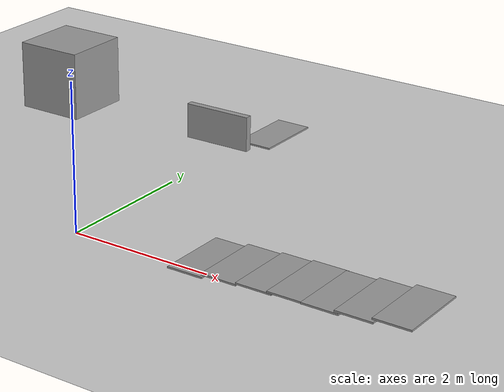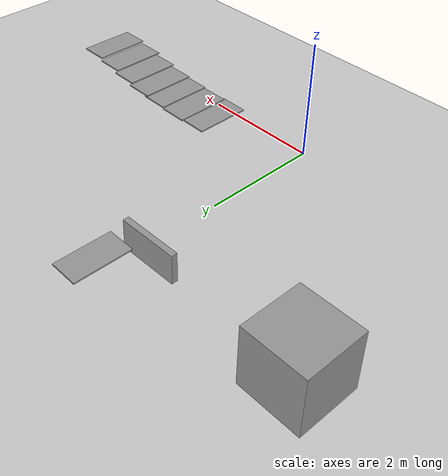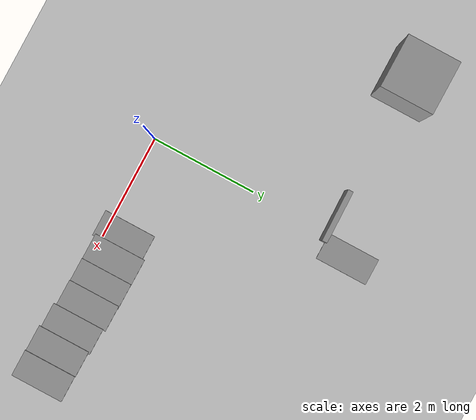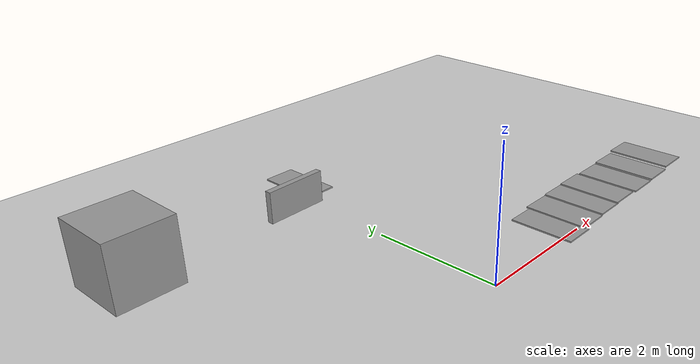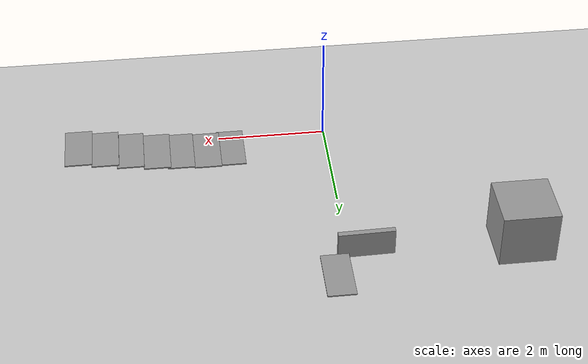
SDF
<sdf version="1.7">
 <world name="default">
  <light name="sun" type="directional">
   <pose>0 0 10 0 -0 0</pose>
   <diffuse>0.8 0.8 0.8 1</diffuse>
   <specular>0.1 0.1 0.1 1</specular>
   <attenuation>
    <range>1000</range>
    <constant>0.9</constant>
    <linear>0.01</linear>
    <quadratic>0.001</quadratic>
   </attenuation>
   <direction>-0.5 0.5 -1</direction>
   <spot><inner_angle>0</inner_angle><outer_angle>0</outer_angle><falloff>0</falloff></spot>
  </light>
  <model name="ground_plane">
   <static>1</static>
   <link name="link">
    <collision name="collision">
     <geometry><plane><normal>0 0 1</normal><size>100 100</size></plane></geometry>
     <surface><friction><ode><mu>100</mu><mu2>50</mu2></ode></friction></surface>
    </collision>
    <visual name="visual">
     <cast_shadows>0</cast_shadows>
     <geometry><plane><normal>0 0 1</normal><size>100 100</size></plane></geometry>
     <material>
      <script><uri>file://media/materials/scripts/gazebo.material</uri><name>Gazebo/Grey</name></script>
     </material>
    </visual>
   </link>
  </model>
  <gravity>0 0 -9.8</gravity>
  <magnetic_field>6e-06 2.3e-05 -4.2e-05</magnetic_field>
  <atmosphere type="adiabatic"/>
  <physics name="default_physics" default="0" type="ode">
   <max_step_size>0.001</max_step_size>
   <real_time_factor>1</real_time_factor>
   <real_time_update_rate>1000</real_time_update_rate>
  </physics>
  <scene><ambient>0.4 0.4 0.4 1</ambient><background>0.7 0.7 0.7 1</background><shadows>1</shadows></scene>
  <spherical_coordinates>
   <surface_model>EARTH_WGS84</surface_model>
   <latitude_deg>0</latitude_deg>
   <longitude_deg>0</longitude_deg>
   <elevation>0</elevation>
   <heading_deg>0</heading_deg>
  </spherical_coordinates>
  <audio><device>default</device></audio>
  <model name="unit_box_stairs_2_clone">
   <link name="link">
    <inertial>
     <mass>56.0142</mass>
     <inertia><ixx>4.67016</ixx><ixy>0</ixy><ixz>0</ixz><iyy>1.18862</iyy><iyz>0</iyz><izz>5.85417</izz></inertia>
    </inertial>
    <self_collide>1</self_collide>
    <kinematic>1</kinematic>
    <pose>-0.16833 0.492907 -0.383532 0 -0 0</pose>
    <visual name="visual">
     <geometry><box><size>0.504129 1 0.022223</size></box></geometry>
     <material>
      <script><name>Gazebo/Grey</name><uri>file://media/materials/scripts/gazebo.material</uri></script>
      <shader type="pixel"><normal_map>__default__</normal_map></shader>
      <ambient>0.3 0.3 0.3 1</ambient>
      <diffuse>0.7 0.7 0.7 1</diffuse>
      <specular>0.01 0.01 0.01 1</specular>
      <emissive>0 0 0 1</emissive>
     </material>
    </visual>
    <collision name="collision">
     <geometry><box><size>0.504129 1 0.022223</size></box></geometry>
     <surface>
      <friction>
       <ode><mu>1</mu><mu2>1</mu2><fdir1>0 0 0</fdir1><slip1>0</slip1><slip2>0</slip2></ode>
       <torsional>
        <coefficient>1</coefficient>
        <patch_radius>0</patch_radius>
        <surface_radius>0</surface_radius>
        <use_patch_radius>1</use_patch_radius>
        <ode><slip>0</slip></ode>
       </torsional>
      </friction>
      <bounce><restitution_coefficient>0</restitution_coefficient><threshold>1e+06</threshold></bounce>
      <contact>
       <collide_without_contact>0</collide_without_contact>
       <collide_without_contact_bitmask>1</collide_without_contact_bitmask>
       <collide_bitmask>1</collide_bitmask>
       <ode>
        <soft_cfm>0</soft_cfm>
        <soft_erp>0.2</soft_erp>
        <kp>1e+13</kp>
        <kd>1</kd>
        <max_vel>0.01</max_vel>
        <min_depth>0</min_depth>
       </ode>
       <bullet>
        <split_impulse>1</split_impulse>
        <split_impulse_penetration_threshold>-0.01</split_impulse_penetration_threshold>
        <soft_cfm>0</soft_cfm>
        <soft_erp>0.2</soft_erp>
        <kp>1e+13</kp>
        <kd>1</kd>
       </bullet>
      </contact>
     </surface>
    </collision>
   </link>
   <static>0</static>
   <pose>1.96889 -0.158443 0.413742 0 -0 0</pose>
  </model>
  <model name="unit_box_stairs_2_clone_clone">
   <link name="link">
    <inertial>
     <mass>56.0142</mass>
     <inertia><ixx>4.67016</ixx><ixy>0</ixy><ixz>0</ixz><iyy>1.18862</iyy><iyz>0</iyz><izz>5.85417</izz></inertia>
    </inertial>
    <self_collide>1</self_collide>
    <kinematic>1</kinematic>
    <pose>-0.16833 0.492907 -0.383532 0 -0 0</pose>
    <visual name="visual">
     <geometry><box><size>0.504129 1 0.022223</size></box></geometry>
     <material>
      <script><name>Gazebo/Grey</name><uri>file://media/materials/scripts/gazebo.material</uri></script>
      <shader type="pixel"><normal_map>__default__</normal_map></shader>
      <ambient>0.3 0.3 0.3 1</ambient>
      <diffuse>0.7 0.7 0.7 1</diffuse>
      <specular>0.01 0.01 0.01 1</specular>
      <emissive>0 0 0 1</emissive>
     </material>
    </visual>
    <collision name="collision">
     <geometry><box><size>0.504129 1 0.022223</size></box></geometry>
     <surface>
      <friction>
       <ode><mu>1</mu><mu2>1</mu2><fdir1>0 0 0</fdir1><slip1>0</slip1><slip2>0</slip2></ode>
       <torsional>
        <coefficient>1</coefficient>
        <patch_radius>0</patch_radius>
        <surface_radius>0</surface_radius>
        <use_patch_radius>1</use_patch_radius>
        <ode><slip>0</slip></ode>
       </torsional>
      </friction>
      <bounce><restitution_coefficient>0</restitution_coefficient><threshold>1e+06</threshold></bounce>
      <contact>
       <collide_without_contact>0</collide_without_contact>
       <collide_without_contact_bitmask>1</collide_without_contact_bitmask>
       <collide_bitmask>1</collide_bitmask>
       <ode>
        <soft_cfm>0</soft_cfm>
        <soft_erp>0.2</soft_erp>
        <kp>1e+13</kp>
        <kd>1</kd>
        <max_vel>0.01</max_vel>
        <min_depth>0</min_depth>
       </ode>
       <bullet>
        <split_impulse>1</split_impulse>
        <split_impulse_penetration_threshold>-0.01</split_impulse_penetration_threshold>
        <soft_cfm>0</soft_cfm>
        <soft_erp>0.2</soft_erp>
        <kp>1e+13</kp>
        <kd>1</kd>
       </bullet>
      </contact>
     </surface>
    </collision>
   </link>
   <static>0</static>
   <pose>2.42466 -0.116135 0.433551 0 -0 0</pose>
  </model>
  <model name="unit_box_stairs_2_clone_clone_0">
   <link name="link">
    <inertial>
     <mass>56.0142</mass>
     <inertia><ixx>4.67016</ixx><ixy>0</ixy><ixz>0</ixz><iyy>1.18862</iyy><iyz>0</iyz><izz>5.85417</izz></inertia>
    </inertial>
    <self_collide>1</self_collide>
    <kinematic>1</kinematic>
    <pose>-0.16833 0.492907 -0.383532 0 -0 0</pose>
    <visual name="visual">
     <geometry><box><size>0.504129 1 0.022223</size></box></geometry>
     <material>
      <script><name>Gazebo/Grey</name><uri>file://media/materials/scripts/gazebo.material</uri></script>
      <shader type="pixel"><normal_map>__default__</normal_map></shader>
      <ambient>0.3 0.3 0.3 1</ambient>
      <diffuse>0.7 0.7 0.7 1</diffuse>
      <specular>0.01 0.01 0.01 1</specular>
      <emissive>0 0 0 1</emissive>
     </material>
    </visual>
    <collision name="collision">
     <geometry><box><size>0.504129 1 0.022223</size></box></geometry>
     <surface>
      <friction>
       <ode><mu>1</mu><mu2>1</mu2><fdir1>0 0 0</fdir1><slip1>0</slip1><slip2>0</slip2></ode>
       <torsional>
        <coefficient>1</coefficient>
        <patch_radius>0</patch_radius>
        <surface_radius>0</surface_radius>
        <use_patch_radius>1</use_patch_radius>
        <ode><slip>0</slip></ode>
       </torsional>
      </friction>
      <bounce><restitution_coefficient>0</restitution_coefficient><threshold>1e+06</threshold></bounce>
      <contact>
       <collide_without_contact>0</collide_without_contact>
       <collide_without_contact_bitmask>1</collide_without_contact_bitmask>
       <collide_bitmask>1</collide_bitmask>
       <ode>
        <soft_cfm>0</soft_cfm>
        <soft_erp>0.2</soft_erp>
        <kp>1e+13</kp>
        <kd>1</kd>
        <max_vel>0.01</max_vel>
        <min_depth>0</min_depth>
       </ode>
       <bullet>
        <split_impulse>1</split_impulse>
        <split_impulse_penetration_threshold>-0.01</split_impulse_penetration_threshold>
        <soft_cfm>0</soft_cfm>
        <soft_erp>0.2</soft_erp>
        <kp>1e+13</kp>
        <kd>1</kd>
       </bullet>
      </contact>
     </surface>
    </collision>
   </link>
   <static>0</static>
   <pose>2.92324 -0.117843 0.457505 0 -0 0</pose>
  </model>
  <model name="unit_box_stairs_2_clone_clone_1">
   <link name="link">
    <inertial>
     <mass>56.0142</mass>
     <inertia><ixx>4.67016</ixx><ixy>0</ixy><ixz>0</ixz><iyy>1.18862</iyy><iyz>0</iyz><izz>5.85417</izz></inertia>
    </inertial>
    <self_collide>1</self_collide>
    <kinematic>1</kinematic>
    <pose>-0.16833 0.492907 -0.383532 0 -0 0</pose>
    <visual name="visual">
     <geometry><box><size>0.504129 1 0.022223</size></box></geometry>
     <material>
      <script><name>Gazebo/Grey</name><uri>file://media/materials/scripts/gazebo.material</uri></script>
      <shader type="pixel"><normal_map>__default__</normal_map></shader>
      <ambient>0.3 0.3 0.3 1</ambient>
      <diffuse>0.7 0.7 0.7 1</diffuse>
      <specular>0.01 0.01 0.01 1</specular>
      <emissive>0 0 0 1</emissive>
     </material>
    </visual>
    <collision name="collision">
     <geometry><box><size>0.504129 1 0.022223</size></box></geometry>
     <surface>
      <friction>
       <ode><mu>1</mu><mu2>1</mu2><fdir1>0 0 0</fdir1><slip1>0</slip1><slip2>0</slip2></ode>
       <torsional>
        <coefficient>1</coefficient>
        <patch_radius>0</patch_radius>
        <surface_radius>0</surface_radius>
        <use_patch_radius>1</use_patch_radius>
        <ode><slip>0</slip></ode>
       </torsional>
      </friction>
      <bounce><restitution_coefficient>0</restitution_coefficient><threshold>1e+06</threshold></bounce>
      <contact>
       <collide_without_contact>0</collide_without_contact>
       <collide_without_contact_bitmask>1</collide_without_contact_bitmask>
       <collide_bitmask>1</collide_bitmask>
       <ode>
        <soft_cfm>0</soft_cfm>
        <soft_erp>0.2</soft_erp>
        <kp>1e+13</kp>
        <kd>1</kd>
        <max_vel>0.01</max_vel>
        <min_depth>0</min_depth>
       </ode>
       <bullet>
        <split_impulse>1</split_impulse>
        <split_impulse_penetration_threshold>-0.01</split_impulse_penetration_threshold>
        <soft_cfm>0</soft_cfm>
        <soft_erp>0.2</soft_erp>
        <kp>1e+13</kp>
        <kd>1</kd>
       </bullet>
      </contact>
     </surface>
    </collision>
   </link>
   <static>0</static>
   <pose>3.36696 -0.126113 0.482049 0 -0 0</pose>
  </model>
  <model name="unit_box_stairs_2_clone_clone_2">
   <link name="link">
    <inertial>
     <mass>56.0142</mass>
     <inertia><ixx>4.67016</ixx><ixy>0</ixy><ixz>0</ixz><iyy>1.18862</iyy><iyz>0</iyz><izz>5.85417</izz></inertia>
    </inertial>
    <self_collide>1</self_collide>
    <kinematic>1</kinematic>
    <pose>-0.16833 0.492907 -0.383532 0 -0 0</pose>
    <visual name="visual">
     <geometry><box><size>0.504129 1 0.022223</size></box></geometry>
     <material>
      <script><name>Gazebo/Grey</name><uri>file://media/materials/scripts/gazebo.material</uri></script>
      <shader type="pixel"><normal_map>__default__</normal_map></shader>
      <ambient>0.3 0.3 0.3 1</ambient>
      <diffuse>0.7 0.7 0.7 1</diffuse>
      <specular>0.01 0.01 0.01 1</specular>
      <emissive>0 0 0 1</emissive>
     </material>
    </visual>
    <collision name="collision">
     <geometry><box><size>0.504129 1 0.022223</size></box></geometry>
     <surface>
      <friction>
       <ode><mu>1</mu><mu2>1</mu2><fdir1>0 0 0</fdir1><slip1>0</slip1><slip2>0</slip2></ode>
       <torsional>
        <coefficient>1</coefficient>
        <patch_radius>0</patch_radius>
        <surface_radius>0</surface_radius>
        <use_patch_radius>1</use_patch_radius>
        <ode><slip>0</slip></ode>
       </torsional>
      </friction>
      <bounce><restitution_coefficient>0</restitution_coefficient><threshold>1e+06</threshold></bounce>
      <contact>
       <collide_without_contact>0</collide_without_contact>
       <collide_without_contact_bitmask>1</collide_without_contact_bitmask>
       <collide_bitmask>1</collide_bitmask>
       <ode>
        <soft_cfm>0</soft_cfm>
        <soft_erp>0.2</soft_erp>
        <kp>1e+13</kp>
        <kd>1</kd>
        <max_vel>0.01</max_vel>
        <min_depth>0</min_depth>
       </ode>
       <bullet>
        <split_impulse>1</split_impulse>
        <split_impulse_penetration_threshold>-0.01</split_impulse_penetration_threshold>
        <soft_cfm>0</soft_cfm>
        <soft_erp>0.2</soft_erp>
        <kp>1e+13</kp>
        <kd>1</kd>
       </bullet>
      </contact>
     </surface>
    </collision>
   </link>
   <static>0</static>
   <pose>3.85893 -0.175027 0.506632 0 -0 0</pose>
  </model>
  <model name="unit_box_stairs_2_clone_clone_3">
   <link name="link">
    <inertial>
     <mass>56.0142</mass>
     <inertia><ixx>4.67016</ixx><ixy>0</ixy><ixz>0</ixz><iyy>1.18862</iyy><iyz>0</iyz><izz>5.85417</izz></inertia>
    </inertial>
    <self_collide>1</self_collide>
    <kinematic>1</kinematic>
    <pose>-0.16833 0.492907 -0.383532 0 -0 0</pose>
    <visual name="visual">
     <geometry><box><size>0.504129 1 0.022223</size></box></geometry>
     <material>
      <script><name>Gazebo/Grey</name><uri>file://media/materials/scripts/gazebo.material</uri></script>
      <shader type="pixel"><normal_map>__default__</normal_map></shader>
      <ambient>0.3 0.3 0.3 1</ambient>
      <diffuse>0.7 0.7 0.7 1</diffuse>
      <specular>0.01 0.01 0.01 1</specular>
      <emissive>0 0 0 1</emissive>
     </material>
    </visual>
    <collision name="collision">
     <geometry><box><size>0.504129 1 0.022223</size></box></geometry>
     <surface>
      <friction>
       <ode><mu>1</mu><mu2>1</mu2><fdir1>0 0 0</fdir1><slip1>0</slip1><slip2>0</slip2></ode>
       <torsional>
        <coefficient>1</coefficient>
        <patch_radius>0</patch_radius>
        <surface_radius>0</surface_radius>
        <use_patch_radius>1</use_patch_radius>
        <ode><slip>0</slip></ode>
       </torsional>
      </friction>
      <bounce><restitution_coefficient>0</restitution_coefficient><threshold>1e+06</threshold></bounce>
      <contact>
       <collide_without_contact>0</collide_without_contact>
       <collide_without_contact_bitmask>1</collide_without_contact_bitmask>
       <collide_bitmask>1</collide_bitmask>
       <ode>
        <soft_cfm>0</soft_cfm>
        <soft_erp>0.2</soft_erp>
        <kp>1e+13</kp>
        <kd>1</kd>
        <max_vel>0.01</max_vel>
        <min_depth>0</min_depth>
       </ode>
       <bullet>
        <split_impulse>1</split_impulse>
        <split_impulse_penetration_threshold>-0.01</split_impulse_penetration_threshold>
        <soft_cfm>0</soft_cfm>
        <soft_erp>0.2</soft_erp>
        <kp>1e+13</kp>
        <kd>1</kd>
       </bullet>
      </contact>
     </surface>
    </collision>
   </link>
   <static>0</static>
   <pose>4.32152 -0.204815 0.557563 0 -0 0</pose>
  </model>
  <model name="unit_box_stairs_2_clone_clone_4">
   <link name="link">
    <inertial>
     <mass>56.0142</mass>
     <inertia><ixx>4.67016</ixx><ixy>0</ixy><ixz>0</ixz><iyy>1.18862</iyy><iyz>0</iyz><izz>5.85417</izz></inertia>
    </inertial>
    <self_collide>1</self_collide>
    <kinematic>1</kinematic>
    <pose>-0.16833 0.492907 -0.383532 0 -0 0</pose>
    <visual name="visual">
     <geometry><box><size>0.504129 1 0.022223</size></box></geometry>
     <material>
      <script><name>Gazebo/Grey</name><uri>file://media/materials/scripts/gazebo.material</uri></script>
      <shader type="pixel"><normal_map>__default__</normal_map></shader>
      <ambient>0.3 0.3 0.3 1</ambient>
      <diffuse>0.7 0.7 0.7 1</diffuse>
      <specular>0.01 0.01 0.01 1</specular>
      <emissive>0 0 0 1</emissive>
     </material>
    </visual>
    <collision name="collision">
     <geometry><box><size>0.504129 1 0.022223</size></box></geometry>
     <surface>
      <friction>
       <ode><mu>1</mu><mu2>1</mu2><fdir1>0 0 0</fdir1><slip1>0</slip1><slip2>0</slip2></ode>
       <torsional>
        <coefficient>1</coefficient>
        <patch_radius>0</patch_radius>
        <surface_radius>0</surface_radius>
        <use_patch_radius>1</use_patch_radius>
        <ode><slip>0</slip></ode>
       </torsional>
      </friction>
      <bounce><restitution_coefficient>0</restitution_coefficient><threshold>1e+06</threshold></bounce>
      <contact>
       <collide_without_contact>0</collide_without_contact>
       <collide_without_contact_bitmask>1</collide_without_contact_bitmask>
       <collide_bitmask>1</collide_bitmask>
       <ode>
        <soft_cfm>0</soft_cfm>
        <soft_erp>0.2</soft_erp>
        <kp>1e+13</kp>
        <kd>1</kd>
        <max_vel>0.01</max_vel>
        <min_depth>0</min_depth>
       </ode>
       <bullet>
        <split_impulse>1</split_impulse>
        <split_impulse_penetration_threshold>-0.01</split_impulse_penetration_threshold>
        <soft_cfm>0</soft_cfm>
        <soft_erp>0.2</soft_erp>
        <kp>1e+13</kp>
        <kd>1</kd>
       </bullet>
      </contact>
     </surface>
    </collision>
   </link>
   <static>0</static>
   <pose>4.81039 -0.210292 0.613787 0 -0 0</pose>
  </model>
  <model name="unit_box_heavy">
   <link name="link">
    <inertial>
     <mass>1000</mass>
     <inertia><ixx>166.667</ixx><ixy>0</ixy><ixz>0</ixz><iyy>166.667</iyy><iyz>0</iyz><izz>166.667</izz></inertia>
    </inertial>
    <visual name="visual">
     <geometry><box><size>1 1 1</size></box></geometry>
     <material>
      <script><name>Gazebo/Grey</name><uri>file://media/materials/scripts/gazebo.material</uri></script>
      <shader type="pixel"><normal_map>__default__</normal_map></shader>
     </material>
    </visual>
    <collision name="collision">
     <geometry><box><size>1 1 1</size></box></geometry>
     <surface>
      <friction>
       <ode><mu>1</mu><mu2>1</mu2><fdir1>0 0 0</fdir1><slip1>0</slip1><slip2>0</slip2></ode>
       <torsional>
        <coefficient>1</coefficient>
        <patch_radius>0</patch_radius>
        <surface_radius>0</surface_radius>
        <use_patch_radius>1</use_patch_radius>
        <ode><slip>0</slip></ode>
       </torsional>
      </friction>
      <bounce><restitution_coefficient>0</restitution_coefficient><threshold>1e+06</threshold></bounce>
      <contact>
       <collide_without_contact>0</collide_without_contact>
       <collide_without_contact_bitmask>1</collide_without_contact_bitmask>
       <collide_bitmask>1</collide_bitmask>
       <ode>
        <soft_cfm>0</soft_cfm>
        <soft_erp>0.2</soft_erp>
        <kp>1e+13</kp>
        <kd>1</kd>
        <max_vel>0.01</max_vel>
        <min_depth>0</min_depth>
       </ode>
       <bullet>
        <split_impulse>1</split_impulse>
        <split_impulse_penetration_threshold>-0.01</split_impulse_penetration_threshold>
        <soft_cfm>0</soft_cfm>
        <soft_erp>0.2</soft_erp>
        <kp>1e+13</kp>
        <kd>1</kd>
       </bullet>
      </contact>
     </surface>
    </collision>
   </link>
   <static>0</static>
   <pose>-3.02453 3.53604 0.5 0 -0 0</pose>
  </model>
  <model name="unit_box-heavy">
   <link name="link">
    <inertial>
     <mass>86.0219</mass>
     <inertia><ixx>2.04976</ixx><ixy>0</ixy><ixz>0</ixz><iyy>9.01273</iyy><iyz>0</iyz><izz>7.37402</izz></inertia>
    </inertial>
    <visual name="visual">
     <geometry><box><size>1 0.0989402 0.507217</size></box></geometry>
     <material>
      <script><name>Gazebo/Grey</name><uri>file://media/materials/scripts/gazebo.material</uri></script>
      <shader type="pixel"><normal_map>__default__</normal_map></shader>
     </material>
    </visual>
    <collision name="collision">
     <geometry><box><size>1 0.0989402 0.507217</size></box></geometry>
     <surface>
      <friction>
       <ode><mu>1</mu><mu2>1</mu2><fdir1>0 0 0</fdir1><slip1>0</slip1><slip2>0</slip2></ode>
       <torsional>
        <coefficient>1</coefficient>
        <patch_radius>0</patch_radius>
        <surface_radius>0</surface_radius>
        <use_patch_radius>1</use_patch_radius>
        <ode><slip>0</slip></ode>
       </torsional>
      </friction>
      <bounce><restitution_coefficient>0</restitution_coefficient><threshold>1e+06</threshold></bounce>
      <contact>
       <collide_without_contact>0</collide_without_contact>
       <collide_without_contact_bitmask>1</collide_without_contact_bitmask>
       <collide_bitmask>1</collide_bitmask>
       <ode>
        <soft_cfm>0</soft_cfm>
        <soft_erp>0.2</soft_erp>
        <kp>1e+13</kp>
        <kd>1</kd>
        <max_vel>0.01</max_vel>
        <min_depth>0</min_depth>
       </ode>
       <bullet>
        <split_impulse>1</split_impulse>
        <split_impulse_penetration_threshold>-0.01</split_impulse_penetration_threshold>
        <soft_cfm>0</soft_cfm>
        <soft_erp>0.2</soft_erp>
        <kp>1e+13</kp>
        <kd>1</kd>
       </bullet>
      </contact>
     </surface>
    </collision>
   </link>
   <static>0</static>
   <pose>-0.301043 3.49679 0.253609 0 -0 0.018941</pose>
  </model>
  <model name="unit_box_stairs_2_clone_clone_2_clone">
   <link name="link">
    <inertial>
     <mass>56.0142</mass>
     <inertia><ixx>4.67016</ixx><ixy>0</ixy><ixz>0</ixz><iyy>1.18862</iyy><iyz>0</iyz><izz>5.85417</izz></inertia>
    </inertial>
    <self_collide>1</self_collide>
    <kinematic>1</kinematic>
    <pose>-0.16833 0.492907 -0.383532 0 -0 0</pose>
    <visual name="visual">
     <geometry><box><size>0.504129 1 0.022223</size></box></geometry>
     <material>
      <script><name>Gazebo/Grey</name><uri>file://media/materials/scripts/gazebo.material</uri></script>
      <shader type="pixel"><normal_map>__default__</normal_map></shader>
      <ambient>0.3 0.3 0.3 1</ambient>
      <diffuse>0.7 0.7 0.7 1</diffuse>
      <specular>0.01 0.01 0.01 1</specular>
      <emissive>0 0 0 1</emissive>
     </material>
    </visual>
    <collision name="collision">
     <geometry><box><size>0.504129 1 0.022223</size></box></geometry>
     <surface>
      <friction>
       <ode><mu>1</mu><mu2>1</mu2><fdir1>0 0 0</fdir1><slip1>0</slip1><slip2>0</slip2></ode>
       <torsional>
        <coefficient>1</coefficient>
        <patch_radius>0</patch_radius>
        <surface_radius>0</surface_radius>
        <use_patch_radius>1</use_patch_radius>
        <ode><slip>0</slip></ode>
       </torsional>
      </friction>
      <bounce><restitution_coefficient>0</restitution_coefficient><threshold>1e+06</threshold></bounce>
      <contact>
       <collide_without_contact>0</collide_without_contact>
       <collide_without_contact_bitmask>1</collide_without_contact_bitmask>
       <collide_bitmask>1</collide_bitmask>
       <ode>
        <soft_cfm>0</soft_cfm>
        <soft_erp>0.2</soft_erp>
        <kp>1e+13</kp>
        <kd>1</kd>
        <max_vel>0.01</max_vel>
        <min_depth>0</min_depth>
       </ode>
       <bullet>
        <split_impulse>1</split_impulse>
        <split_impulse_penetration_threshold>-0.01</split_impulse_penetration_threshold>
        <soft_cfm>0</soft_cfm>
        <soft_erp>0.2</soft_erp>
        <kp>1e+13</kp>
        <kd>1</kd>
       </bullet>
      </contact>
     </surface>
    </collision>
   </link>
   <static>0</static>
   <pose>0.430517 3.56534 0.465647 0 -0 0</pose>
  </model>
 </world>
</sdf>
